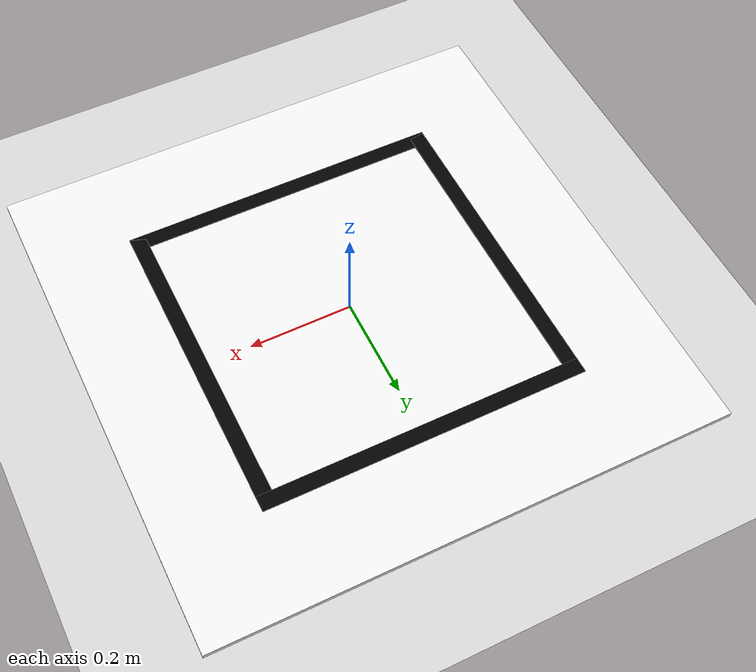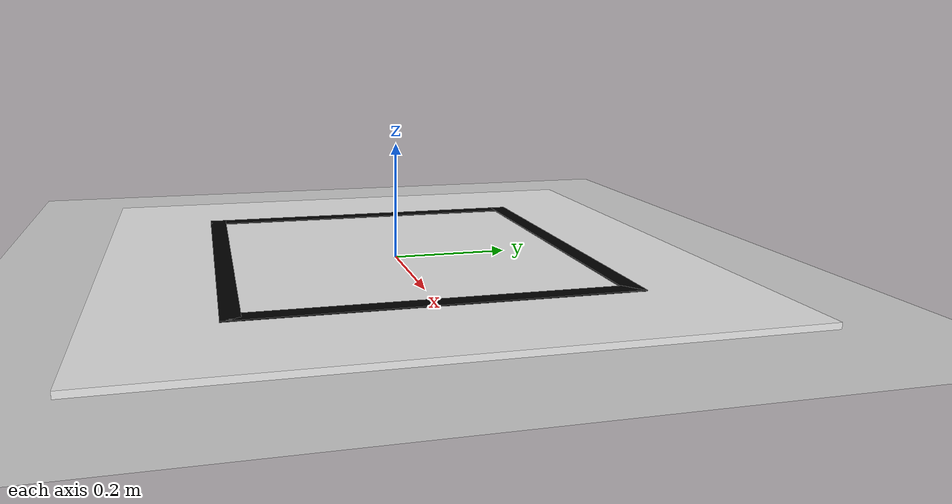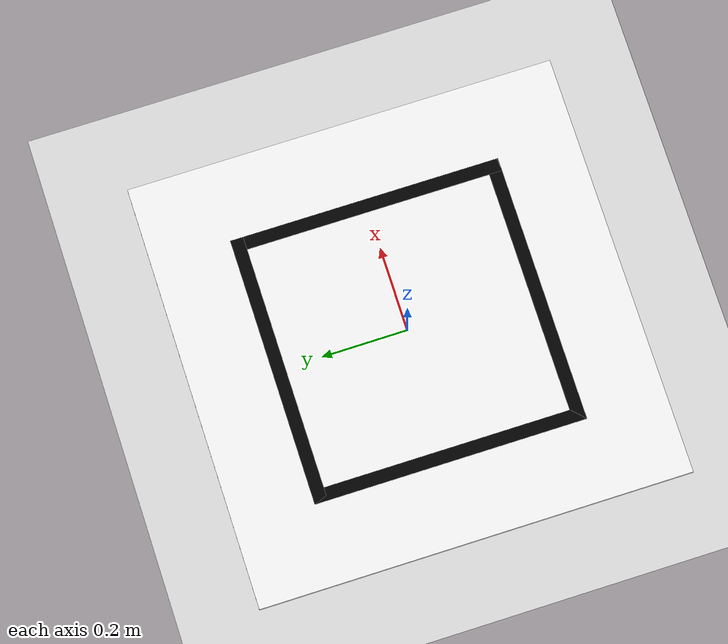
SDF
<?xml version="1.0" ?>
<sdf version="1.7">
  <world name="mbot2_world">

    <physics name="1ms" type="ode">
      <max_step_size>0.001</max_step_size>
      <real_time_factor>1.0</real_time_factor>
    </physics>

    <plugin filename="libignition-gazebo-physics-system.so"
            name="ignition::gazebo::systems::Physics">
    </plugin>
    <plugin filename="libignition-gazebo-user-commands-system.so"
            name="ignition::gazebo::systems::UserCommands">
    </plugin>
    <plugin filename="libignition-gazebo-scene-broadcaster-system.so"
            name="ignition::gazebo::systems::SceneBroadcaster">
    </plugin>
    <plugin filename="libignition-gazebo-sensors-system.so"
            name="ignition::gazebo::systems::Sensors">
      <render_engine>ogre2</render_engine>
    </plugin>

    <light type="directional" name="sun">
      <cast_shadows>true</cast_shadows>
      <pose>0 0 10 0 0 0</pose>
      <diffuse>0.8 0.8 0.8 1</diffuse>
      <specular>0.2 0.2 0.2 1</specular>
      <attenuation>
        <range>1000</range>
        <constant>0.9</constant>
        <linear>0.01</linear>
        <quadratic>0.001</quadratic>
      </attenuation>
      <direction>-0.5 0.1 -0.9</direction>
    </light>

    <model name="ground_plane">
      <static>true</static>
      <link name="link">
        <collision name="collision">
          <geometry>
            <plane>
              <normal>0 0 1</normal>
              <size>20 20</size>
            </plane>
          </geometry>
          <surface>
            <friction>
              <ode>
                <mu>1.0</mu>
                <mu2>1.0</mu2>
              </ode>
            </friction>
          </surface>
        </collision>
        <visual name="visual">
          <geometry>
            <plane>
              <normal>0 0 1</normal>
              <size>20 20</size>
            </plane>
          </geometry>
          <material>
            <ambient>0.8 0.8 0.8 1</ambient>
            <diffuse>0.8 0.8 0.8 1</diffuse>
            <specular>0.8 0.8 0.8 1</specular>
          </material>
        </visual>
      </link>
    </model>

    <!-- Test platform + line track: defined separately in test_platform.sdf -->
    <!-- so it can be found/edited without scrolling through this file.      -->
    <include>
      <uri>test_platform.sdf</uri>
      <pose>0 0 0 0 0 0</pose>
    </include>

  </world>
</sdf>

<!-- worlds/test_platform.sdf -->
<sdf version="1.7">
  <model name="test_track">
    <static>true</static>

    <!-- White floor, raised 1cm above the main ground plane -->
    <link name="platform_link">
      <pose>0 0 0.005 0 0 0</pose>
      <collision name="collision">
        <geometry>
          <box><size>1.0 1.0 0.01</size></box>
        </geometry>
      </collision>
      <visual name="visual">
        <geometry>
          <box><size>1.0 1.0 0.01</size></box>
        </geometry>
        <material>
          <ambient>0.9 0.9 0.9 1</ambient>
          <diffuse>0.9 0.9 0.9 1</diffuse>
        </material>
      </visual>
    </link>

    <!-- Black square line, 0.6 x 0.6 m centerline, 0.03 m wide -->
    <link name="track_link">
      <visual name="top">
        <pose>0 0.3 0.011 0 0 0</pose>
        <geometry>
          <box><size>0.63 0.03 0.002</size></box>
        </geometry>
        <material>
          <ambient>0 0 0 1</ambient>
          <diffuse>0 0 0 1</diffuse>
        </material>
      </visual>
      <visual name="bottom">
        <pose>0 -0.3 0.011 0 0 0</pose>
        <geometry>
          <box><size>0.63 0.03 0.002</size></box>
        </geometry>
        <material>
          <ambient>0 0 0 1</ambient>
          <diffuse>0 0 0 1</diffuse>
        </material>
      </visual>
      <visual name="left">
        <pose>-0.3 0 0.011 0 0 0</pose>
        <geometry>
          <box><size>0.03 0.63 0.002</size></box>
        </geometry>
        <material>
          <ambient>0 0 0 1</ambient>
          <diffuse>0 0 0 1</diffuse>
        </material>
      </visual>
      <visual name="right">
        <pose>0.3 0 0.011 0 0 0</pose>
        <geometry>
          <box><size>0.03 0.63 0.002</size></box>
        </geometry>
        <material>
          <ambient>0 0 0 1</ambient>
          <diffuse>0 0 0 1</diffuse>
        </material>
      </visual>
    </link>

  </model>
</sdf>
